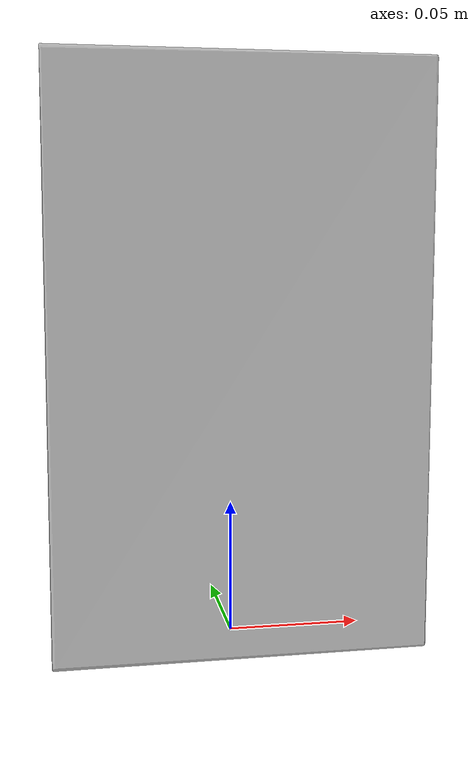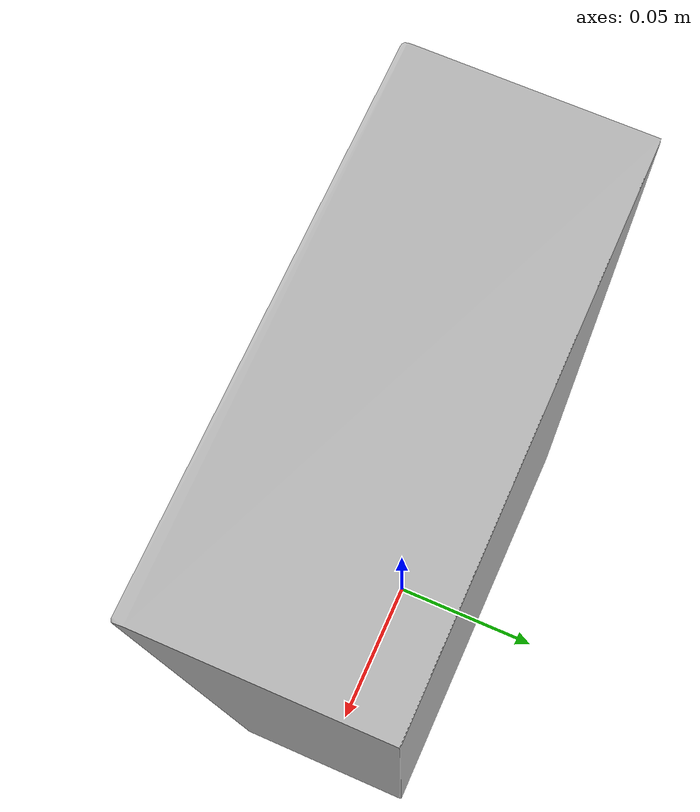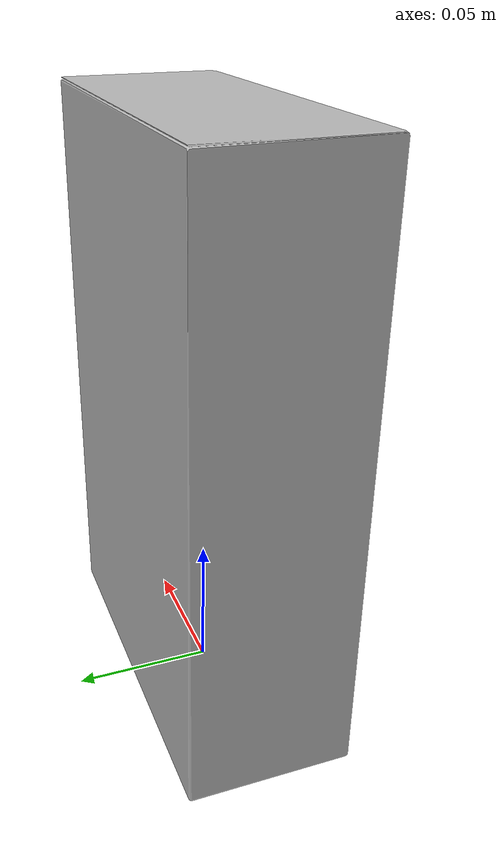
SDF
<?xml version="1.0" ?>
<sdf version="1.4">
  <model name="DoughnutMix">
    <link name="DoughnutMix_link">
      <inertial>
        <pose>0 0 0 0 0 0</pose>
        <mass>0.08</mass>
      </inertial>

      <visual name="DoughnutMix_visual">
        <pose>0 0 0 0 0 0</pose>
        <geometry>
          <mesh>
            <uri>model://DoughnutMix/meshes/DoughnutMix.dae</uri>
          </mesh>
        </geometry>
      </visual>

      <collision name="DoughnutMix_collision">
        <pose>0 0 0 0 0 0</pose>
        <geometry>
          <mesh>
            <uri>model://DoughnutMix/meshes/DoughnutMix.dae</uri>
          </mesh>
        </geometry>
        <surface>
          <friction>
            <ode>
              <mu>0.8</mu>
              <mu2>0.8</mu2>
              <fdir1>0.0 0.0 0.0</fdir1>
              <slip1>0.01</slip1>
              <slip2>0.01</slip2>
            </ode>
          </friction>
        </surface>
      </collision>

    </link>
  </model>
</sdf>
